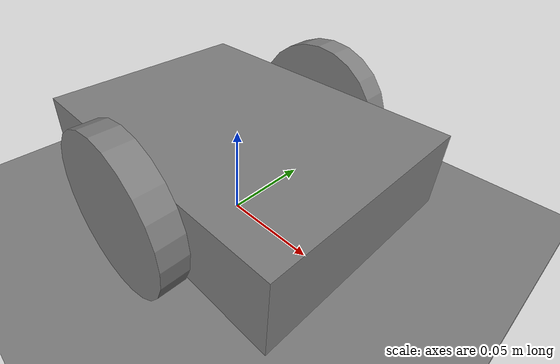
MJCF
<!-- Desk rover, simplified, Ø80 mm wheels. Generated by the worker in M4; hand-written for M0. -->
<mujoco model="desk-rover">
  <option timestep="0.002"/>
  <worldbody>
    <geom name="floor" type="plane" size="5 5 0.1"/>
    <geom name="rug" type="box" pos="0.9 0 0.004" size="0.6 1 0.004" friction="1.4 0.02 0.002"/>
    <body name="rover" pos="0 0 0.04">
      <freejoint/>
      <geom name="chassis" type="box" size="0.08 0.06 0.02" mass="0.25"/>
      <body name="wheel_l_body" pos="0 0.068 0">
        <joint name="wheel_l_joint" type="hinge" axis="0 1 0"/>
        <geom name="wheel_l" type="cylinder" size="0.04 0.007" euler="90 0 0" mass="0.018"/>
      </body>
      <body name="wheel_r_body" pos="0 -0.068 0">
        <joint name="wheel_r_joint" type="hinge" axis="0 1 0"/>
        <geom name="wheel_r" type="cylinder" size="0.04 0.007" euler="90 0 0" mass="0.018"/>
      </body>
      <geom name="caster" type="sphere" pos="-0.065 0 -0.032" size="0.008" mass="0.006"/>
    </body>
  </worldbody>
  <actuator>
    <velocity name="drive_l" joint="wheel_l_joint" kv="0.05"/>
    <velocity name="drive_r" joint="wheel_r_joint" kv="0.05"/>
  </actuator>
</mujoco>
